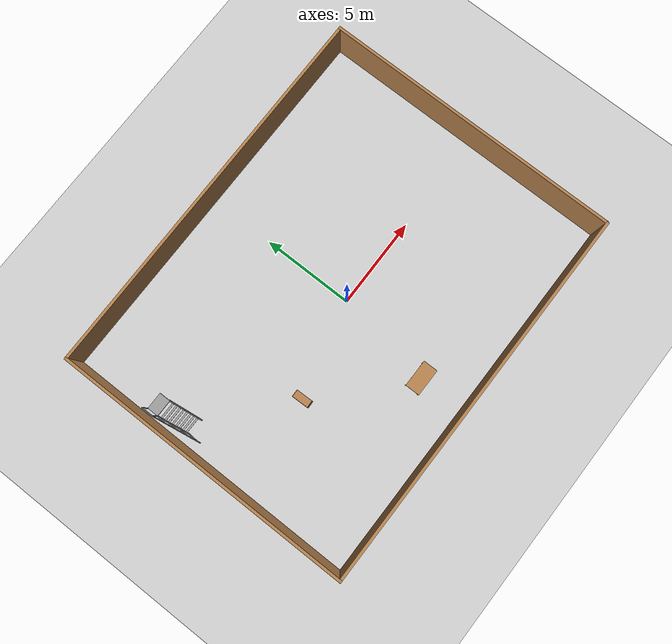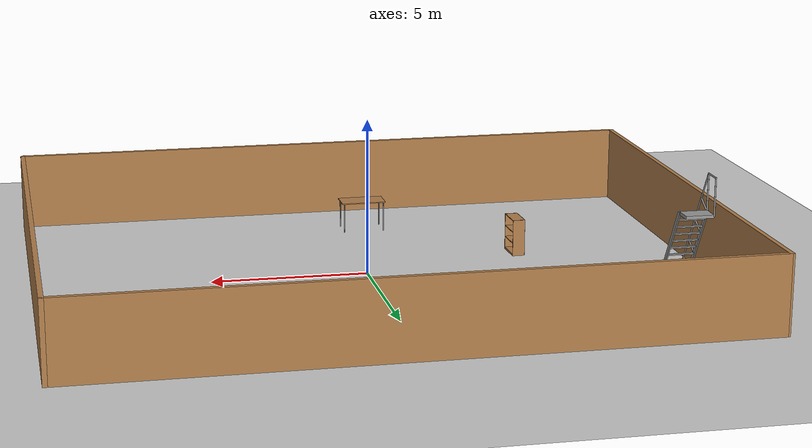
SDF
<sdf version="1.7">
 <world name="default">
  <light name="sun" type="directional">
   <pose>0 0 10 0 -0 0</pose>
   <diffuse>0.8 0.8 0.8 1</diffuse>
   <specular>0.2 0.2 0.2 1</specular>
   <attenuation>
    <range>1000</range>
    <constant>0.9</constant>
    <linear>0.01</linear>
    <quadratic>0.001</quadratic>
   </attenuation>
   <direction>-0.5 0.1 -0.9</direction>
   <spot><inner_angle>0</inner_angle><outer_angle>0</outer_angle><falloff>0</falloff></spot>
  </light>
  <model name="ground_plane">
   <static>1</static>
   <link name="link">
    <collision name="collision">
     <geometry><plane><normal>0 0 1</normal><size>100 100</size></plane></geometry>
     <surface><friction><ode><mu>100</mu><mu2>50</mu2></ode></friction></surface>
    </collision>
    <visual name="visual">
     <cast_shadows>0</cast_shadows>
     <geometry><plane><normal>0 0 1</normal><size>100 100</size></plane></geometry>
     <material>
      <script><uri>file://media/materials/scripts/gazebo.material</uri><name>Gazebo/Grey</name></script>
     </material>
    </visual>
   </link>
  </model>
  <gravity>0 0 -9.8</gravity>
  <magnetic_field>6e-06 2.3e-05 -4.2e-05</magnetic_field>
  <atmosphere type="adiabatic"/>
  <physics type="ode">
   <max_step_size>0.001</max_step_size>
   <real_time_factor>1</real_time_factor>
   <real_time_update_rate>1000</real_time_update_rate>
  </physics>
  <scene><ambient>0.4 0.4 0.4 1</ambient><background>0.7 0.7 0.7 1</background><shadows>1</shadows></scene>
  <spherical_coordinates>
   <surface_model>EARTH_WGS84</surface_model>
   <latitude_deg>0</latitude_deg>
   <longitude_deg>0</longitude_deg>
   <elevation>0</elevation>
   <heading_deg>0</heading_deg>
  </spherical_coordinates>
  <model name="table">
   <static>1</static>
   <link name="link">
    <collision name="surface">
     <pose>0 0 1 0 -0 0</pose>
     <geometry><box><size>1.5 0.8 0.03</size></box></geometry>
     <surface><friction><ode><mu>0.6</mu><mu2>0.6</mu2></ode></friction></surface>
    </collision>
    <visual name="visual1">
     <pose>0 0 1 0 -0 0</pose>
     <geometry><box><size>1.5 0.8 0.03</size></box></geometry>
     <material>
      <script><uri>file://media/materials/scripts/gazebo.material</uri><name>Gazebo/Wood</name></script>
     </material>
    </visual>
    <collision name="front_left_leg">
     <pose>0.68 0.38 0.5 0 -0 0</pose>
     <geometry><cylinder><radius>0.02</radius><length>1</length></cylinder></geometry>
    </collision>
    <visual name="front_left_leg">
     <pose>0.68 0.38 0.5 0 -0 0</pose>
     <geometry><cylinder><radius>0.02</radius><length>1</length></cylinder></geometry>
     <material>
      <script><uri>file://media/materials/scripts/gazebo.material</uri><name>Gazebo/Grey</name></script>
     </material>
    </visual>
    <collision name="front_right_leg">
     <pose>0.68 -0.38 0.5 0 -0 0</pose>
     <geometry><cylinder><radius>0.02</radius><length>1</length></cylinder></geometry>
    </collision>
    <visual name="front_right_leg">
     <pose>0.68 -0.38 0.5 0 -0 0</pose>
     <geometry><cylinder><radius>0.02</radius><length>1</length></cylinder></geometry>
     <material>
      <script><uri>file://media/materials/scripts/gazebo.material</uri><name>Gazebo/Grey</name></script>
     </material>
    </visual>
    <collision name="back_right_leg">
     <pose>-0.68 -0.38 0.5 0 -0 0</pose>
     <geometry><cylinder><radius>0.02</radius><length>1</length></cylinder></geometry>
    </collision>
    <visual name="back_right_leg">
     <pose>-0.68 -0.38 0.5 0 -0 0</pose>
     <geometry><cylinder><radius>0.02</radius><length>1</length></cylinder></geometry>
     <material>
      <script><uri>file://media/materials/scripts/gazebo.material</uri><name>Gazebo/Grey</name></script>
     </material>
    </visual>
    <collision name="back_left_leg">
     <pose>-0.68 0.38 0.5 0 -0 0</pose>
     <geometry><cylinder><radius>0.02</radius><length>1</length></cylinder></geometry>
    </collision>
    <visual name="back_left_leg">
     <pose>-0.68 0.38 0.5 0 -0 0</pose>
     <geometry><cylinder><radius>0.02</radius><length>1</length></cylinder></geometry>
     <material>
      <script><uri>file://media/materials/scripts/gazebo.material</uri><name>Gazebo/Grey</name></script>
     </material>
    </visual>
   </link>
   <pose>-0.869444 -5.30217 0 0 -0 0</pose>
  </model>
  <model name="Untitled">
   <pose>-0.064708 0.35294 0 0 -0 0</pose>
   <link name="Wall_11">
    <collision name="Wall_11_Collision">
     <geometry><box><size>21.25 0.15 2.5</size></box></geometry>
     <pose>0 0 1.25 0 -0 0</pose>
    </collision>
    <visual name="Wall_11_Visual">
     <pose>0 0 1.25 0 -0 0</pose>
     <geometry><box><size>21.25 0.15 2.5</size></box></geometry>
     <material>
      <script><uri>file://media/materials/scripts/gazebo.material</uri><name>Gazebo/Wood</name></script>
      <ambient>1 1 1 1</ambient>
     </material>
     <meta><layer>0</layer></meta>
    </visual>
    <pose>0.012426 8.21443 0 0 -0 3.14159</pose>
   </link>
   <link name="Wall_12">
    <collision name="Wall_12_Collision">
     <geometry><box><size>16.5789 0.15 2.5</size></box></geometry>
     <pose>0 0 1.25 0 -0 0</pose>
    </collision>
    <visual name="Wall_12_Visual">
     <pose>0 0 1.25 0 -0 0</pose>
     <geometry><box><size>16.5789 0.15 2.5</size></box></geometry>
     <material>
      <script><uri>file://media/materials/scripts/gazebo.material</uri><name>Gazebo/Wood</name></script>
      <ambient>1 1 1 1</ambient>
     </material>
     <meta><layer>0</layer></meta>
    </visual>
    <pose>-10.5499 0 0 0 -0 -1.5723</pose>
   </link>
   <link name="Wall_4">
    <collision name="Wall_4_Collision">
     <geometry><box><size>21.25 0.15 2.5</size></box></geometry>
     <pose>0 0 1.25 0 -0 0</pose>
    </collision>
    <visual name="Wall_4_Visual">
     <pose>0 0 1.25 0 -0 0</pose>
     <geometry><box><size>21.25 0.15 2.5</size></box></geometry>
     <material>
      <script><uri>file://media/materials/scripts/gazebo.material</uri><name>Gazebo/Wood</name></script>
      <ambient>1 1 1 1</ambient>
     </material>
     <meta><layer>0</layer></meta>
    </visual>
    <pose>-0.012314 -8.21443 0 0 -0 0</pose>
   </link>
   <link name="Wall_9">
    <collision name="Wall_9_Collision">
     <geometry><box><size>16.5 0.15 2.5</size></box></geometry>
     <pose>0 0 1.25 0 -0 0</pose>
    </collision>
    <visual name="Wall_9_Visual">
     <pose>0 0 1.25 0 -0 0</pose>
     <geometry><box><size>16.5 0.15 2.5</size></box></geometry>
     <material>
      <script><uri>file://media/materials/scripts/gazebo.material</uri><name>Gazebo/Wood</name></script>
      <ambient>1 1 1 1</ambient>
     </material>
     <meta><layer>0</layer></meta>
    </visual>
    <pose>10.5624 0.039434 0 0 -0 -1.5708</pose>
   </link>
   <static>1</static>
  </model>
  <model name="bookshelf">
   <static>1</static>
   <link name="link">
    <inertial><mass>1</mass></inertial>
    <collision name="back">
     <pose>0 0.005 0.6 0 -0 0</pose>
     <geometry><box><size>0.9 0.01 1.2</size></box></geometry>
    </collision>
    <visual name="visual1">
     <pose>0 0.005 0.6 0 -0 0</pose>
     <geometry><box><size>0.9 0.01 1.2</size></box></geometry>
     <material>
      <script><uri>file://media/materials/scripts/gazebo.material</uri><name>Gazebo/Wood</name></script>
     </material>
    </visual>
    <collision name="left_side">
     <pose>0.45 -0.195 0.6 0 -0 0</pose>
     <geometry><box><size>0.02 0.4 1.2</size></box></geometry>
    </collision>
    <visual name="visual2">
     <pose>0.45 -0.195 0.6 0 -0 0</pose>
     <geometry><box><size>0.02 0.4 1.2</size></box></geometry>
     <material>
      <script><uri>file://media/materials/scripts/gazebo.material</uri><name>Gazebo/Wood</name></script>
     </material>
    </visual>
    <collision name="right_side">
     <pose>-0.45 -0.195 0.6 0 -0 0</pose>
     <geometry><box><size>0.02 0.4 1.2</size></box></geometry>
    </collision>
    <visual name="visual3">
     <pose>-0.45 -0.195 0.6 0 -0 0</pose>
     <geometry><box><size>0.02 0.4 1.2</size></box></geometry>
     <material>
      <script><uri>file://media/materials/scripts/gazebo.material</uri><name>Gazebo/Wood</name></script>
     </material>
    </visual>
    <collision name="bottom">
     <pose>0 -0.195 0.03 0 -0 0</pose>
     <geometry><box><size>0.88 0.4 0.06</size></box></geometry>
    </collision>
    <visual name="visual4">
     <pose>0 -0.195 0.03 0 -0 0</pose>
     <geometry><box><size>0.88 0.4 0.06</size></box></geometry>
     <material>
      <script><uri>file://media/materials/scripts/gazebo.material</uri><name>Gazebo/Wood</name></script>
     </material>
    </visual>
    <collision name="top">
     <pose>0 -0.195 1.19 0 -0 0</pose>
     <geometry><box><size>0.88 0.4 0.02</size></box></geometry>
    </collision>
    <visual name="visual5">
     <pose>0 -0.195 1.19 0 -0 0</pose>
     <geometry><box><size>0.88 0.4 0.02</size></box></geometry>
     <material>
      <script><uri>file://media/materials/scripts/gazebo.material</uri><name>Gazebo/Wood</name></script>
     </material>
    </visual>
    <collision name="low_shelf">
     <pose>0 -0.195 0.43 0 -0 0</pose>
     <geometry><box><size>0.88 0.4 0.02</size></box></geometry>
    </collision>
    <visual name="visual6">
     <pose>0 -0.195 0.43 0 -0 0</pose>
     <geometry><box><size>0.88 0.4 0.02</size></box></geometry>
     <material>
      <script><uri>file://media/materials/scripts/gazebo.material</uri><name>Gazebo/Wood</name></script>
     </material>
    </visual>
    <collision name="high_shelf">
     <pose>0 -0.195 0.8 0 -0 0</pose>
     <geometry><box><size>0.88 0.4 0.02</size></box></geometry>
    </collision>
    <visual name="visual7">
     <pose>0 -0.195 0.8 0 -0 0</pose>
     <geometry><box><size>0.88 0.4 0.02</size></box></geometry>
     <material>
      <script><uri>file://media/materials/scripts/gazebo.material</uri><name>Gazebo/Wood</name></script>
     </material>
    </visual>
   </link>
   <pose>-5.42134 -1.34082 0.030343 0 -0 1.5956</pose>
  </model>
  <model name="ladder_60deg_1rails">
   <static>1</static>
   <link name="step0">
    <pose>0 0.15396 0.266667 0 -0 0</pose>
    <inertial>
     <mass>9.75482</mass>
     <inertia>
      <ixx>0.00957124</ixx>
      <iyy>0.65963</iyy>
      <izz>0.666842</izz>
      <ixy>0</ixy>
      <ixz>0</ixz>
      <iyz>0</iyz>
     </inertia>
    </inertial>
    <collision name="collision"><geometry><box><size>0.9 0.1016 0.0381</size></box></geometry></collision>
    <visual name="visual">
     <geometry><box><size>0.9 0.1016 0.0381</size></box></geometry>
     <material>
      <script><uri>file://media/materials/scripts/gazebo.material</uri><name>Gazebo/Grey</name></script>
     </material>
    </visual>
   </link>
   <link name="step1">
    <pose>0 0.30792 0.533333 0 -0 0</pose>
    <inertial>
     <mass>9.75482</mass>
     <inertia>
      <ixx>0.00957124</ixx>
      <iyy>0.65963</iyy>
      <izz>0.666842</izz>
      <ixy>0</ixy>
      <ixz>0</ixz>
      <iyz>0</iyz>
     </inertia>
    </inertial>
    <collision name="collision"><geometry><box><size>0.9 0.1016 0.0381</size></box></geometry></collision>
    <visual name="visual">
     <geometry><box><size>0.9 0.1016 0.0381</size></box></geometry>
     <material>
      <script><uri>file://media/materials/scripts/gazebo.material</uri><name>Gazebo/Grey</name></script>
     </material>
    </visual>
   </link>
   <link name="step2">
    <pose>0 0.46188 0.8 0 -0 0</pose>
    <inertial>
     <mass>9.75482</mass>
     <inertia>
      <ixx>0.00957124</ixx>
      <iyy>0.65963</iyy>
      <izz>0.666842</izz>
      <ixy>0</ixy>
      <ixz>0</ixz>
      <iyz>0</iyz>
     </inertia>
    </inertial>
    <collision name="collision"><geometry><box><size>0.9 0.1016 0.0381</size></box></geometry></collision>
    <visual name="visual">
     <geometry><box><size>0.9 0.1016 0.0381</size></box></geometry>
     <material>
      <script><uri>file://media/materials/scripts/gazebo.material</uri><name>Gazebo/Grey</name></script>
     </material>
    </visual>
   </link>
   <link name="step3">
    <pose>0 0.61584 1.06667 0 -0 0</pose>
    <inertial>
     <mass>9.75482</mass>
     <inertia>
      <ixx>0.00957124</ixx>
      <iyy>0.65963</iyy>
      <izz>0.666842</izz>
      <ixy>0</ixy>
      <ixz>0</ixz>
      <iyz>0</iyz>
     </inertia>
    </inertial>
    <collision name="collision"><geometry><box><size>0.9 0.1016 0.0381</size></box></geometry></collision>
    <visual name="visual">
     <geometry><box><size>0.9 0.1016 0.0381</size></box></geometry>
     <material>
      <script><uri>file://media/materials/scripts/gazebo.material</uri><name>Gazebo/Grey</name></script>
     </material>
    </visual>
   </link>
   <link name="step4">
    <pose>0 0.7698 1.33333 0 -0 0</pose>
    <inertial>
     <mass>9.75482</mass>
     <inertia>
      <ixx>0.00957124</ixx>
      <iyy>0.65963</iyy>
      <izz>0.666842</izz>
      <ixy>0</ixy>
      <ixz>0</ixz>
      <iyz>0</iyz>
     </inertia>
    </inertial>
    <collision name="collision"><geometry><box><size>0.9 0.1016 0.0381</size></box></geometry></collision>
    <visual name="visual">
     <geometry><box><size>0.9 0.1016 0.0381</size></box></geometry>
     <material>
      <script><uri>file://media/materials/scripts/gazebo.material</uri><name>Gazebo/Grey</name></script>
     </material>
    </visual>
   </link>
   <link name="step5">
    <pose>0 0.92376 1.6 0 -0 0</pose>
    <inertial>
     <mass>9.75482</mass>
     <inertia>
      <ixx>0.00957124</ixx>
      <iyy>0.65963</iyy>
      <izz>0.666842</izz>
      <ixy>0</ixy>
      <ixz>0</ixz>
      <iyz>0</iyz>
     </inertia>
    </inertial>
    <collision name="collision"><geometry><box><size>0.9 0.1016 0.0381</size></box></geometry></collision>
    <visual name="visual">
     <geometry><box><size>0.9 0.1016 0.0381</size></box></geometry>
     <material>
      <script><uri>file://media/materials/scripts/gazebo.material</uri><name>Gazebo/Grey</name></script>
     </material>
    </visual>
   </link>
   <link name="step6">
    <pose>0 1.07772 1.86667 0 -0 0</pose>
    <inertial>
     <mass>9.75482</mass>
     <inertia>
      <ixx>0.00957124</ixx>
      <iyy>0.65963</iyy>
      <izz>0.666842</izz>
      <ixy>0</ixy>
      <ixz>0</ixz>
      <iyz>0</iyz>
     </inertia>
    </inertial>
    <collision name="collision"><geometry><box><size>0.9 0.1016 0.0381</size></box></geometry></collision>
    <visual name="visual">
     <geometry><box><size>0.9 0.1016 0.0381</size></box></geometry>
     <material>
      <script><uri>file://media/materials/scripts/gazebo.material</uri><name>Gazebo/Grey</name></script>
     </material>
    </visual>
   </link>
   <link name="step7">
    <pose>0 1.23168 2.13333 0 -0 0</pose>
    <inertial>
     <mass>9.75482</mass>
     <inertia>
      <ixx>0.00957124</ixx>
      <iyy>0.65963</iyy>
      <izz>0.666842</izz>
      <ixy>0</ixy>
      <ixz>0</ixz>
      <iyz>0</iyz>
     </inertia>
    </inertial>
    <collision name="collision"><geometry><box><size>0.9 0.1016 0.0381</size></box></geometry></collision>
    <visual name="visual">
     <geometry><box><size>0.9 0.1016 0.0381</size></box></geometry>
     <material>
      <script><uri>file://media/materials/scripts/gazebo.material</uri><name>Gazebo/Grey</name></script>
     </material>
    </visual>
   </link>
   <link name="landing">
    <pose>0 1.68564 2.4 0 -0 0</pose>
    <inertial>
     <mass>57.6072</mass>
     <inertia><ixx>1.73518</ixx><iyy>3.89545</iyy><izz>5.6167</izz><ixy>0</ixy><ixz>0</ixz><iyz>0</iyz></inertia>
    </inertial>
    <collision name="collision"><geometry><box><size>0.9 0.6 0.1016</size></box></geometry></collision>
    <visual name="visual">
     <geometry><box><size>0.9 0.6 0.1016</size></box></geometry>
     <material>
      <script><uri>file://media/materials/scripts/gazebo.material</uri><name>Gazebo/Grey</name></script>
     </material>
    </visual>
   </link>
   <link name="left_side_wall">
    <pose>-0.45 0.69282 1.2 1.0472 -0 0</pose>
    <collision name="collision"><geometry><box><size>0.0508 2.85128 0.13</size></box></geometry></collision>
    <visual name="visual">
     <geometry><box><size>0.0508 2.85128 0.13</size></box></geometry>
     <material>
      <script><uri>file://media/materials/scripts/gazebo.material</uri><name>Gazebo/Grey</name></script>
     </material>
    </visual>
   </link>
   <link name="right_side_wall">
    <pose>0.45 0.69282 1.2 1.0472 -0 0</pose>
    <collision name="collision"><geometry><box><size>0.0508 2.85128 0.13</size></box></geometry></collision>
    <visual name="visual">
     <geometry><box><size>0.0508 2.85128 0.13</size></box></geometry>
     <material>
      <script><uri>file://media/materials/scripts/gazebo.material</uri><name>Gazebo/Grey</name></script>
     </material>
    </visual>
   </link>
   <link name="left_railing_long">
    <pose>-0.45 0.34282 1.80622 -0.523599 0 0</pose>
    <collision name="collision">
     <geometry><cylinder><radius>0.02413</radius><length>4.17128</length></cylinder></geometry>
    </collision>
    <visual name="visual">
     <geometry><cylinder><radius>0.02413</radius><length>4.17128</length></cylinder></geometry>
     <material>
      <script><uri>file://media/materials/scripts/gazebo.material</uri><name>Gazebo/Grey</name></script>
     </material>
    </visual>
   </link>
   <link name="left_railing_upright0">
    <pose>-0.45 -0.274963 0.15875 1.0472 -0 0</pose>
    <collision name="collision">
     <geometry><cylinder><radius>0.02413</radius><length>0.541218</length></cylinder></geometry>
    </collision>
    <visual name="visual">
     <geometry><cylinder><radius>0.02413</radius><length>0.541218</length></cylinder></geometry>
     <material>
      <script><uri>file://media/materials/scripts/gazebo.material</uri><name>Gazebo/Grey</name></script>
     </material>
    </visual>
   </link>
   <link name="left_railing_upright1">
    <pose>-0.45 0.186917 0.95875 1.0472 -0 0</pose>
    <collision name="collision">
     <geometry><cylinder><radius>0.02413</radius><length>0.541218</length></cylinder></geometry>
    </collision>
    <visual name="visual">
     <geometry><cylinder><radius>0.02413</radius><length>0.541218</length></cylinder></geometry>
     <material>
      <script><uri>file://media/materials/scripts/gazebo.material</uri><name>Gazebo/Grey</name></script>
     </material>
    </visual>
   </link>
   <link name="left_railing_upright2">
    <pose>-0.45 0.648797 1.75875 1.0472 -0 0</pose>
    <collision name="collision">
     <geometry><cylinder><radius>0.02413</radius><length>0.541218</length></cylinder></geometry>
    </collision>
    <visual name="visual">
     <geometry><cylinder><radius>0.02413</radius><length>0.541218</length></cylinder></geometry>
     <material>
      <script><uri>file://media/materials/scripts/gazebo.material</uri><name>Gazebo/Grey</name></script>
     </material>
    </visual>
   </link>
   <link name="left_railing_upright3">
    <pose>-0.45 1.11068 2.55875 1.0472 -0 0</pose>
    <collision name="collision">
     <geometry><cylinder><radius>0.02413</radius><length>0.541218</length></cylinder></geometry>
    </collision>
    <visual name="visual">
     <geometry><cylinder><radius>0.02413</radius><length>0.541218</length></cylinder></geometry>
     <material>
      <script><uri>file://media/materials/scripts/gazebo.material</uri><name>Gazebo/Grey</name></script>
     </material>
    </visual>
   </link>
   <link name="left_railing_landing_top">
    <pose>-0.45 1.68564 3.61244 1.5708 -0 0</pose>
    <collision name="collision">
     <geometry><cylinder><radius>0.02413</radius><length>0.64826</length></cylinder></geometry>
    </collision>
    <visual name="visual">
     <geometry><cylinder><radius>0.02413</radius><length>0.64826</length></cylinder></geometry>
     <material>
      <script><uri>file://media/materials/scripts/gazebo.material</uri><name>Gazebo/Grey</name></script>
     </material>
    </visual>
   </link>
   <link name="left_railing_landing_upright_0">
    <pose>-0.45 1.38564 3.00622 0 -0 0</pose>
    <collision name="collision">
     <geometry><cylinder><radius>0.02413</radius><length>1.21244</length></cylinder></geometry>
    </collision>
    <visual name="visual">
     <geometry><cylinder><radius>0.02413</radius><length>1.21244</length></cylinder></geometry>
     <material>
      <script><uri>file://media/materials/scripts/gazebo.material</uri><name>Gazebo/Grey</name></script>
     </material>
    </visual>
   </link>
   <link name="left_railing_landing_upright_1">
    <pose>-0.45 1.98564 3.00622 0 -0 0</pose>
    <collision name="collision">
     <geometry><cylinder><radius>0.02413</radius><length>1.21244</length></cylinder></geometry>
    </collision>
    <visual name="visual">
     <geometry><cylinder><radius>0.02413</radius><length>1.21244</length></cylinder></geometry>
     <material>
      <script><uri>file://media/materials/scripts/gazebo.material</uri><name>Gazebo/Grey</name></script>
     </material>
    </visual>
   </link>
   <pose>-9.56927 2.04185 0 0 -0 0</pose>
  </model>
 </world>
</sdf>
